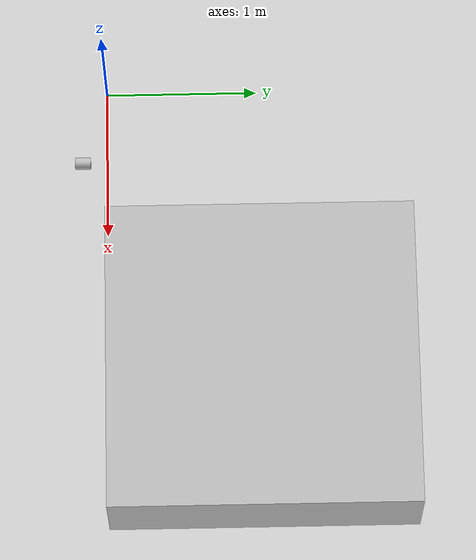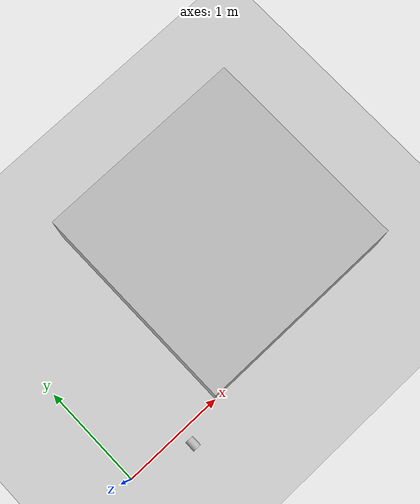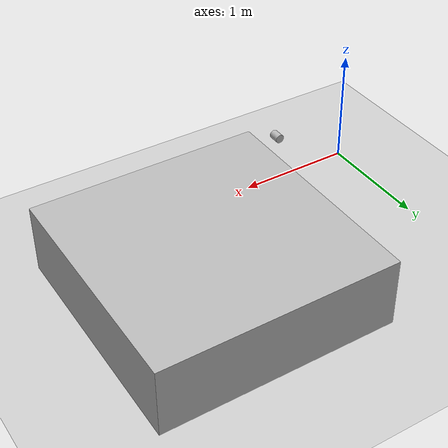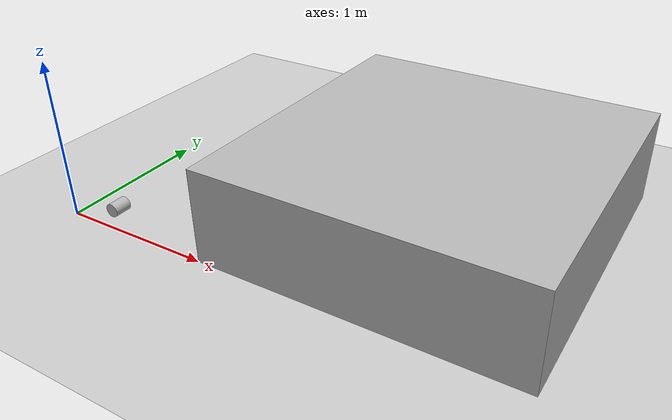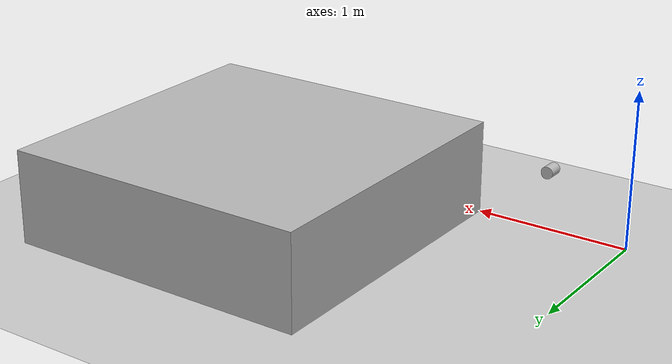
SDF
<?xml version="1.0" ?>
<sdf version="1.4">
  <!-- We use a custom world for the lwr so that the camera angle is launched correctly. -->
  <!-- One can change this world to his needs or use another one. -->

<world name="default">

  <include>
    <uri>model://ground_plane</uri>
  </include>

  <!-- Global light source -->
  <include>
    <uri>model://sun</uri>
  </include>

  <!-- Focus camera -->
  <gui fullscreen='0'>
    <camera name='user_camera'>
      <pose>4.927360 -4.376610 3.740080 0.000000 0.275643 2.356190</pose>
      <view_controller>orbit</view_controller>
    </camera>
  </gui>

<!-- box (like a table) -->
<model name="table">
  <pose>2 1 0.30 0 0 0</pose>
  <static>true</static>
  <link name='linkTable'>
    <pose>0 0 0 0 0 0</pose>

    <collision name="my_collisionTable">
      <pose>0 0 0 0 0 0</pose>
      <geometry>
        <box>
          <size>2 2 0.60</size>
        </box>
      </geometry>
    </collision>

    <visual name="my_visualTable">
      <geometry>
        <box>
          <size>2 2 0.60</size>
        </box>
      </geometry>
    </visual>

    <self_collide>0</self_collide>
    <gravity>1</gravity>
  </link>
</model>

    <!-- cylinder object -->
    <model name="cylinder">
	<pose>0.6 -0.15 0.32 1.57079632679 0 0</pose>
	<static>false</static>
	<link name='link'>
		<pose>0 0 0 0 0 0</pose>
		<collision name="my_collision">
		 	<pose>0 0 0 0 0 0</pose>
			<geometry>
		          	<cylinder>
		<radius> 0.04 </radius>
		<length> 0.1 </length>
	</cylinder>
		        </geometry>
	        </collision>

	        <visual name="my_visual">
			<geometry>
		          	<cylinder>
		<radius> 0.04 </radius>
		<length> 0.1 </length>
	</cylinder>
		        </geometry>
	        </visual>

		<self_collide>0</self_collide>
		<gravity>1</gravity>
	</link>

    </model>

  </world>

</sdf>
